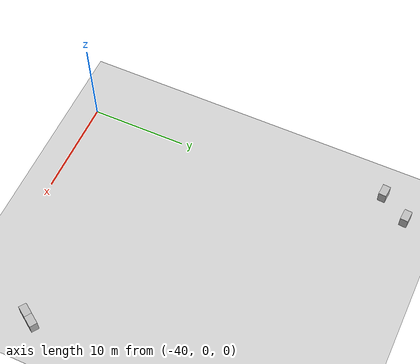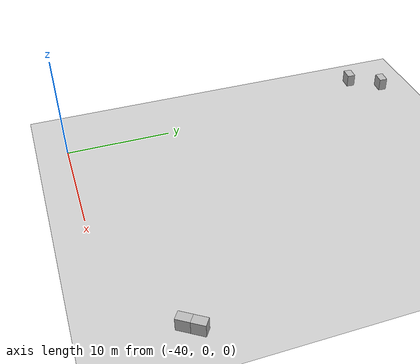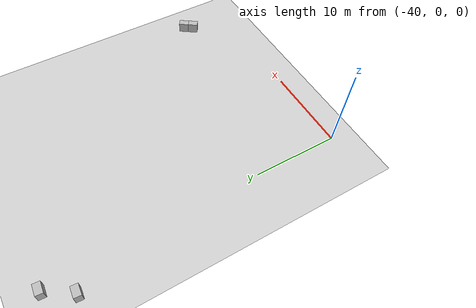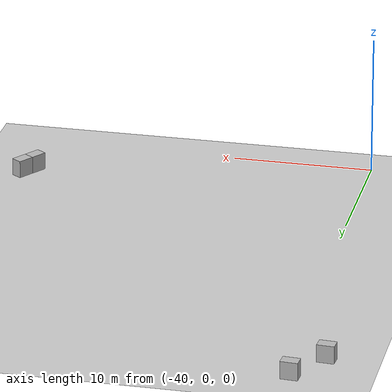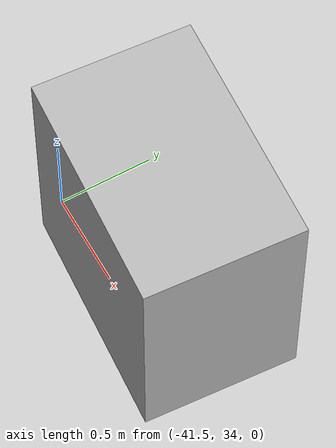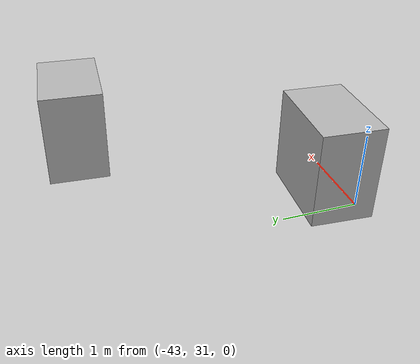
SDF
<sdf version="1.7">
 <world name="default">
  <light name="sun" type="directional">
   <pose>0 0 10 0 -0 0</pose>
   <diffuse>0.8 0.8 0.8 1</diffuse>
   <specular>0.2 0.2 0.2 1</specular>
   <attenuation>
    <range>1000</range>
    <constant>0.9</constant>
    <linear>0.01</linear>
    <quadratic>0.001</quadratic>
   </attenuation>
   <direction>-0.5 0.1 -0.9</direction>
   <spot><inner_angle>0</inner_angle><outer_angle>0</outer_angle><falloff>0</falloff></spot>
  </light>
  <gravity>0 0 -9.8</gravity>
  <magnetic_field>6e-06 2.3e-05 -4.2e-05</magnetic_field>
  <atmosphere type="adiabatic"/>
  <physics type="ode">
   <max_step_size>0.001</max_step_size>
   <real_time_factor>1</real_time_factor>
   <real_time_update_rate>1000</real_time_update_rate>
  </physics>
  <scene><ambient>0.4 0.4 0.4 1</ambient><background>0.7 0.7 0.7 1</background><shadows>1</shadows></scene>
  <spherical_coordinates>
   <surface_model>EARTH_WGS84</surface_model>
   <latitude_deg>0</latitude_deg>
   <longitude_deg>0</longitude_deg>
   <elevation>0</elevation>
   <heading_deg>0</heading_deg>
  </spherical_coordinates>
  <model name="line_map_0">
   <static>1</static>
   <link name="link">
    <collision name="collision">
     <geometry><plane><normal>0 0 10</normal><size>55 55</size></plane></geometry>
     <surface><friction><ode><mu>0.8</mu><mu2>0.8</mu2></ode></friction></surface>
    </collision>
    <visual name="visual">
     <cast_shadows>0</cast_shadows>
     <geometry><plane><normal>0 0 10</normal><size>55 55</size></plane></geometry>
     <material>
      <script>
       <uri>/home/whstms1234/.gazebo/models/line_map/materials/script/line_map.material</uri>
       <uri>/home/whstms1234/.gazebo/models/line_map/materials/textures/field.png</uri>
       <name>LineMap/Image</name>
      </script>
     </material>
    </visual>
   </link>
   <pose>-20.1161 26.2359 0 0 -0 0</pose>
  </model>
  <model name="big_box3_0">
   <pose>-40.8067 34.2174 0.624536 -0 0.000761 -0.068988</pose>
   <static>0</static>
   <link name="link">
    <inertial>
     <mass>40</mass>
     <inertia><ixx>1</ixx><ixy>0</ixy><ixz>0</ixz><iyy>1</iyy><iyz>0</iyz><izz>1</izz></inertia>
    </inertial>
    <collision name="collision">
     <geometry><box><size>1.2 0.8 1.25</size></box></geometry>
     <surface><contact><ode><max_vel>0.1</max_vel><min_depth>0.001</min_depth></ode></contact></surface>
    </collision>
    <visual name="visual">
     <geometry><mesh><uri>model://big_box3/meshes/big_box.dae</uri></mesh></geometry>
    </visual>
   </link>
  </model>
  <model name="big_box3_0_clone">
   <pose>-42.6504 31.2947 0.624498 0 0.000825 -0.068988</pose>
   <static>0</static>
   <link name="link">
    <inertial>
     <mass>40</mass>
     <inertia><ixx>1</ixx><ixy>0</ixy><ixz>0</ixz><iyy>1</iyy><iyz>0</iyz><izz>1</izz></inertia>
    </inertial>
    <collision name="collision">
     <geometry><box><size>1.2 0.8 1.25</size></box></geometry>
     <surface><contact><ode><max_vel>0.1</max_vel><min_depth>0.001</min_depth></ode></contact></surface>
    </collision>
    <visual name="visual">
     <geometry><mesh><uri>model://big_box3/meshes/big_box.dae</uri></mesh></geometry>
    </visual>
   </link>
  </model>
  <model name="big_box3_0_clone_0">
   <pose>-16.3838 5.0464 0.624592 0 -0.000665 0.971465</pose>
   <static>0</static>
   <link name="link">
    <inertial>
     <mass>40</mass>
     <inertia><ixx>1</ixx><ixy>0</ixy><ixz>0</ixz><iyy>1</iyy><iyz>0</iyz><izz>1</izz></inertia>
    </inertial>
    <collision name="collision">
     <geometry><box><size>1.2 0.8 1.25</size></box></geometry>
     <surface><contact><ode><max_vel>0.1</max_vel><min_depth>0.001</min_depth></ode></contact></surface>
    </collision>
    <visual name="visual">
     <geometry><mesh><uri>model://big_box3/meshes/big_box.dae</uri></mesh></geometry>
    </visual>
   </link>
  </model>
  <model name="big_box3_0_clone_0_clone">
   <pose>-15.7019 6.03333 0.624806 0 0.000318 0.971465</pose>
   <static>0</static>
   <link name="link">
    <inertial>
     <mass>40</mass>
     <inertia><ixx>1</ixx><ixy>0</ixy><ixz>0</ixz><iyy>1</iyy><iyz>0</iyz><izz>1</izz></inertia>
    </inertial>
    <collision name="collision">
     <geometry><box><size>1.2 0.8 1.25</size></box></geometry>
     <surface><contact><ode><max_vel>0.1</max_vel><min_depth>0.001</min_depth></ode></contact></surface>
    </collision>
    <visual name="visual">
     <geometry><mesh><uri>model://big_box3/meshes/big_box.dae</uri></mesh></geometry>
    </visual>
   </link>
  </model>
 </world>
</sdf>
